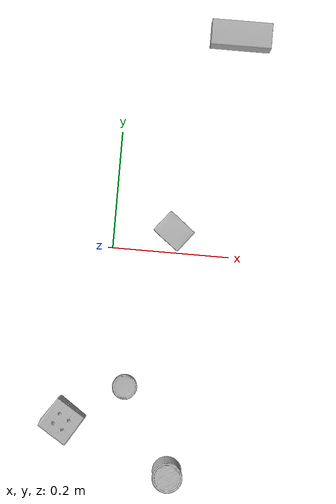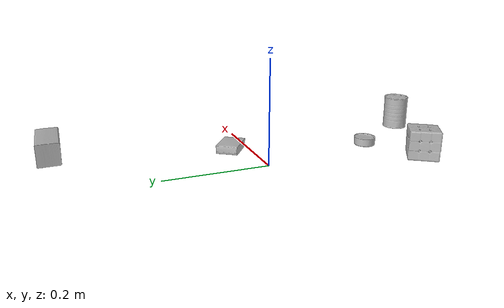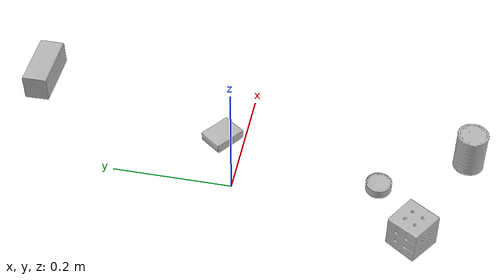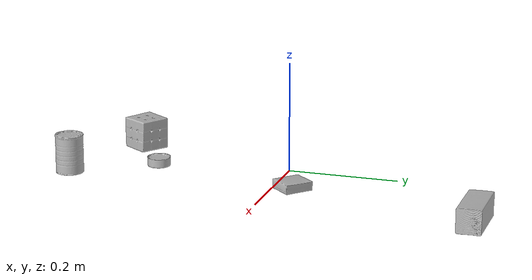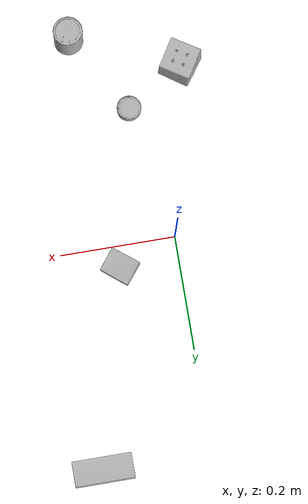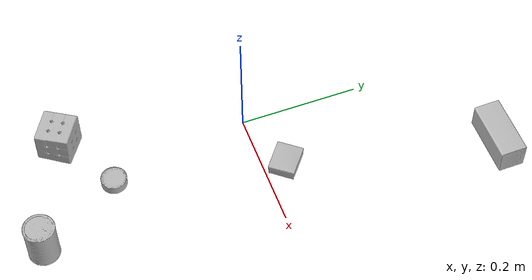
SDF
<sdf version="1.4">
  <world name="default">
    <light name="light1" type="point">
      <pose>0 0 1 0 0 0</pose>
      <diffuse>3 3 3 1</diffuse>
      <specular>3 3 3 1</specular>
    </light>
    <light name="light2" type="point">
      <pose>0 0.5 2 0 0 0</pose>
      <diffuse>1 1 1 1</diffuse>
      <specular>1 1 1 1</specular>
    </light>
    <light name="light3" type="point">
      <pose>0 0.5 2 0 0 0</pose>
      <diffuse>3 3 3 1</diffuse>
      <specular>3 3 3 1</specular>
    </light>
    <scene>
      <ambient>0.7 0.7 0.7</ambient>
    </scene>
    <model name="box1">
      <link name="link_box1">
        <collision name="default">
          <geometry>
            <mesh>
              <uri>model://rubiks_cube/collision_meshes/collision.obj</uri>
              <scale>1.0 1.0 1.0</scale>
            </mesh>
          </geometry>
          <surface>
            <friction>
              <ode>
                <mu>0.5</mu>
                <mu2>0.5</mu2>
              </ode>
            </friction>
          <contact>
        <ode>
            <max_vel>0</max_vel>
            <min_depth>0.0001</min_depth>
            <kp>1e8</kp>
        </ode>
    </contact></surface>
        </collision>
        <visual name="default">
          <geometry>
            <mesh>
              <uri>model://rubiks_cube/visual_meshes/visual.dae</uri>
              <scale>1.0 1.0 1.0</scale>
            </mesh>
          </geometry>
        </visual>
        <inertial>
          <mass>0.19534927606582642</mass>
          <pose>2.6721041649580002e-05 5.256967051536776e-05 -7.264316082000732e-06 -0.05467254413799041 -0.09813991388320625 -0.034457004790174134</pose>
          <inertia>
            <ixx>0.0001079436</ixx>
            <iyy>0.00010744019</iyy>
            <izz>0.000108838074</izz>
            <ixy>0</ixy>
            <ixz>0</ixz>
            <iyz>0</iyz>
          </inertia>
        </inertial>
      </link>
      <pose>-0.059548310935497284 -0.2978511452674866 0.028678977862000465 -3.3650310740619328e-06 -6.235559667800748e-07 0.9981590187717662</pose>
    </model>
    <model name="box2">
      <link name="link_box2">
        <collision name="default">
          <geometry>
            <mesh>
              <uri>model://pudding_box/collision_meshes/collision.obj</uri>
              <scale>0.5 0.5 0.5</scale>
            </mesh>
          </geometry>
          <surface>
            <friction>
              <ode>
                <mu>0.5</mu>
                <mu2>0.5</mu2>
              </ode>
            </friction>
          <contact>
        <ode>
            <max_vel>0</max_vel>
            <min_depth>0.0001</min_depth>
            <kp>1e8</kp>
        </ode>
    </contact></surface>
        </collision>
        <visual name="default">
          <geometry>
            <mesh>
              <uri>model://pudding_box/visual_meshes/visual.dae</uri>
              <scale>0.5 0.5 0.5</scale>
            </mesh>
          </geometry>
        </visual>
        <inertial>
          <mass>0.04727919027209282</mass>
          <pose>0.00024474109522998333 0.00040339428232982755 -0.0002594413817860186 0.0052131013240192415 -0.0066037977924420415 0.020079828889419827</pose>
          <inertia>
            <ixx>1.3361672e-05</ixx>
            <iyy>8.9898285e-06</iyy>
            <izz>1.9732002e-05</izz>
            <ixy>0</ixy>
            <ixz>0</ixz>
            <iyz>0</iyz>
          </inertia>
        </inertial>
      </link>
      <pose>0.10265322774648666 0.03742649778723717 0.009862903505563736 0.02234812555151247 -0.011391990574446625 -2.237029290446492</pose>
    </model>
    <model name="box3">
      <link name="link_box3">
        <collision name="default">
          <geometry>
            <mesh>
              <uri>model://wood_block/collision_meshes/collision.obj</uri>
              <scale>0.5 0.5 0.5</scale>
            </mesh>
          </geometry>
          <surface>
            <friction>
              <ode>
                <mu>0.5</mu>
                <mu2>0.5</mu2>
              </ode>
            </friction>
          <contact>
        <ode>
            <max_vel>0</max_vel>
            <min_depth>0.0001</min_depth>
            <kp>1e8</kp>
        </ode>
    </contact></surface>
        </collision>
        <visual name="default">
          <geometry>
            <mesh>
              <uri>model://wood_block/visual_meshes/visual.dae</uri>
              <scale>0.5 0.5 0.5</scale>
            </mesh>
          </geometry>
        </visual>
        <inertial>
          <mass>0.3041442632675171</mass>
          <pose>-2.9066577553749084e-06 -0.000285404734313488 0.00013204291462898254 -0.05220823380361383 -0.0051926957206686235 -0.0068613778665259926</pose>
          <inertia>
            <ixx>0.00010174775</ixx>
            <iyy>0.0003214212</iyy>
            <izz>0.0003202189</izz>
            <ixy>0</ixy>
            <ixz>0</ixz>
            <iyz>0</iyz>
          </inertia>
        </inertial>
      </link>
      <pose>0.18803872168064117 0.3779599070549011 0.02262927033007145 -0.005208537898031983 0.005718616930581113 0.005065511692638984</pose>
    </model>
    <model name="can1">
      <link name="link_can1">
        <collision name="default">
          <geometry>
            <mesh>
              <uri>model://master_chef_can/collision_meshes/collision.obj</uri>
              <scale>0.5 0.5 0.5</scale>
            </mesh>
          </geometry>
          <surface>
            <friction>
              <ode>
                <mu>0.5</mu>
                <mu2>0.5</mu2>
              </ode>
            </friction>
          <contact>
        <ode>
            <max_vel>0</max_vel>
            <min_depth>0.0001</min_depth>
            <kp>1e8</kp>
        </ode>
    </contact></surface>
        </collision>
        <visual name="default">
          <geometry>
            <mesh>
              <uri>model://master_chef_can/visual_meshes/visual.dae</uri>
              <scale>0.5 0.5 0.5</scale>
            </mesh>
          </geometry>
        </visual>
        <inertial>
          <mass>0.18719419836997986</mass>
          <pose>-4.661963976104744e-05 1.3926856468060578e-07 -5.0798327720258385e-05 -0.0017995099067415357 0.0006479319374111454 -0.6102582770449616</pose>
          <inertia>
            <ixx>0.0001098703</ixx>
            <iyy>0.00010906167</iyy>
            <izz>6.071174e-05</izz>
            <ixy>0</ixy>
            <ixz>0</ixz>
            <iyz>0</iyz>
          </inertia>
        </inertial>
      </link>
      <pose>0.1249636635184288 -0.37412920594215393 0.035301994532346725 -1.36250790139027e-06 -1.1842748296569178e-06 1.2283517147738992</pose>
    </model>
    <model name="can2">
      <link name="link_can2">
        <collision name="default">
          <geometry>
            <mesh>
              <uri>model://tuna_fish_can/collision_meshes/collision.obj</uri>
              <scale>0.5 0.5 0.5</scale>
            </mesh>
          </geometry>
          <surface>
            <friction>
              <ode>
                <mu>0.5</mu>
                <mu2>0.5</mu2>
              </ode>
            </friction>
          <contact>
        <ode>
            <max_vel>0</max_vel>
            <min_depth>0.0001</min_depth>
            <kp>1e8</kp>
        </ode>
    </contact></surface>
        </collision>
        <visual name="default">
          <geometry>
            <mesh>
              <uri>model://tuna_fish_can/visual_meshes/visual.dae</uri>
              <scale>0.5 0.5 0.5</scale>
            </mesh>
          </geometry>
        </visual>
        <inertial>
          <mass>0.011327341198921204</mass>
          <pose>-2.0361354472697712e-05 -7.256336175487377e-06 -0.0005269023822620511 -0.001794480782384504 0.00017159763230480823 0.24052991368062646</pose>
          <inertia>
            <ixx>1.5314733e-06</ixx>
            <iyy>1.52509e-06</iyy>
            <izz>2.6205691e-06</izz>
            <ixy>0</ixy>
            <ixz>0</ixz>
            <iyz>0</iyz>
          </inertia>
        </inertial>
      </link>
      <pose>0.040787335485219955 -0.23501764237880707 0.008520002476871014 -3.918197009769246e-09 1.0566833623989086e-08 3.104624437618819</pose>
    </model>
  <physics type="ode">
      <max_contacts>50</max_contacts>
      <ode>
        <solver>
          <type>quick</type>
          <iters>75</iters>
        </solver>
        <constraints>
          <contact_max_correcting_vel>0</contact_max_correcting_vel>
          <contact_surface_layer>0</contact_surface_layer>
        </constraints>
      </ode>
    </physics></world>
</sdf>
